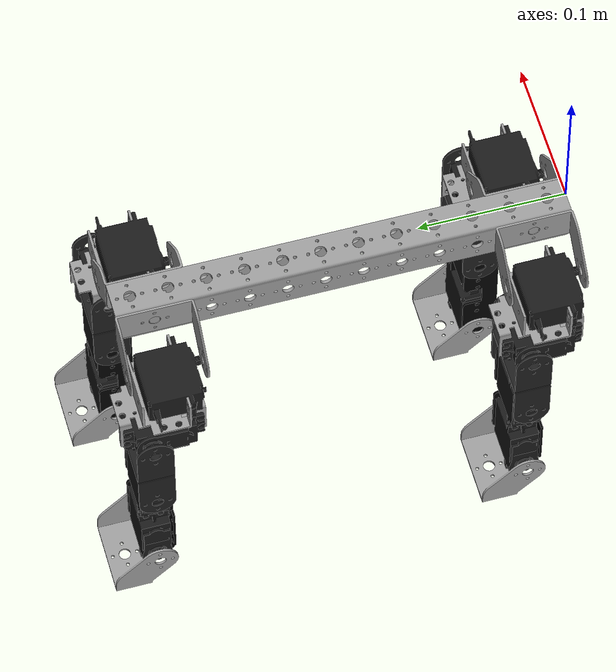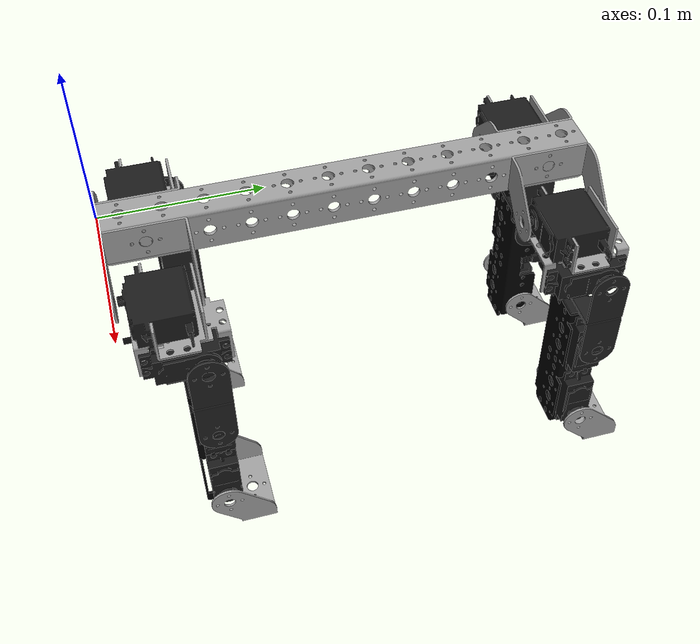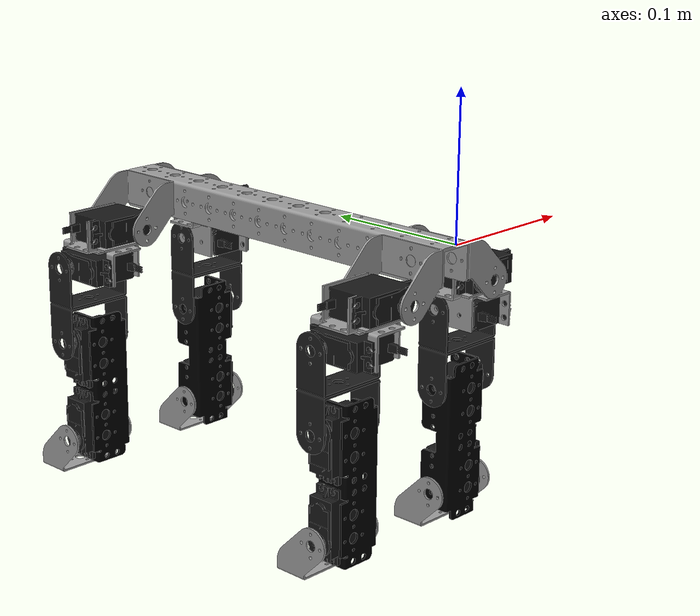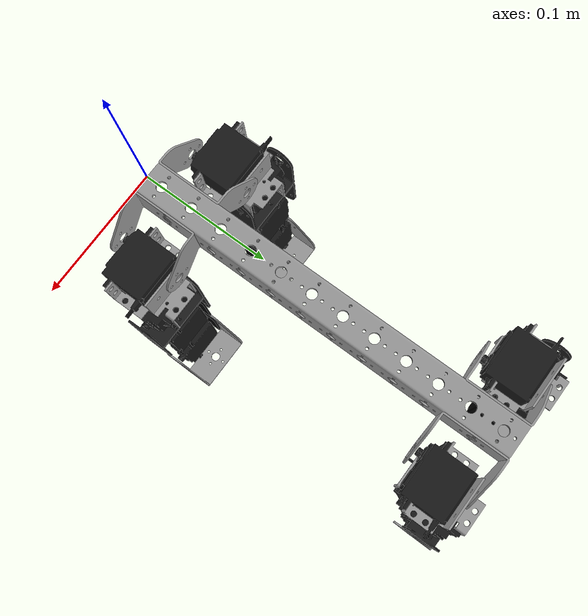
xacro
<?xml version="1.0"?>
<robot xmlns:xacro="http://www.ros.org/wiki/xacro" name="qp4">

    <xacro:property name="cad_dir" value="file://$(find qp4_master)/../../assets/cad"/>

	<!-- Typically, STL/DAE model units are in mm, but RViz units are in m, hence models must be scaled down by 1000. -->
    <xacro:macro name="default_geometry" params="cad_file extension:=dae">
        <geometry>
           <mesh filename="${cad_dir}/${cad_file}.${extension}" scale="0.001 0.001 0.001"/> -->
        </geometry>
    </xacro:macro>

    <xacro:macro name="z_rot">
        <axis xyz="0 0 1"/>
    </xacro:macro>

    <xacro:include filename="$(find qp4_master)/urdf/qp4_materials.xacro"/>
    <xacro:include filename="$(find qp4_master)/urdf/qp4_gazebo.xacro"/>
    <xacro:include filename="$(find qp4_master)/urdf/qp4_parts.xacro"/>

</robot>

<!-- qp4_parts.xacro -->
<!-- QP4 parts -->
<robot xmlns:xacro="http://www.ros.org/wiki/xacro">

    <!-- Torso -->

    <link name="torso_link">
		<visual>
            <xacro:default_geometry cad_file="asb-512"/>
            <origin rpy="${pi/2} 0 0"/>
		</visual>
        <visual>
            <xacro:default_geometry cad_file="asb-11"/>
            <origin xyz="-0.0125 0.0254 -0.0127" rpy="0 0 ${pi/2}"/>
	   </visual>
        <visual>
            <xacro:default_geometry cad_file="asb-11"/>
            <origin xyz="0.0125 0.0254 -0.0127" rpy="0 0 -${pi/2}"/>
	   </visual>
        <visual>
            <xacro:default_geometry cad_file="asb-11"/>
            <origin xyz="-0.0125 0.2794 -0.0127" rpy="0 0 ${pi/2}"/>
	   </visual>
        <visual>
            <xacro:default_geometry cad_file="asb-11"/>
            <origin xyz="0.0125 0.2794 -0.0127" rpy="0 0 -${pi/2}"/>
	   </visual>

	 	<collision>
            <xacro:default_geometry cad_file="asb-512"/>
            <origin rpy="${pi/2} 0 0"/>
		</collision>
        <collision>
            <xacro:default_geometry cad_file="asb-11"/>
            <origin xyz="-0.0125 0.0254 -0.0127" rpy="0 0 ${pi/2}"/>
	   </collision>
        <collision>
            <xacro:default_geometry cad_file="asb-11"/>
            <origin xyz="0.0125 0.0254 -0.0127" rpy="0 0 -${pi/2}"/>
	   </collision>
        <collision>
            <xacro:default_geometry cad_file="asb-11"/>
            <origin xyz="-0.0125 0.2794 -0.0127" rpy="0 0 ${pi/2}"/>
	   </collision>
        <collision>
            <xacro:default_geometry cad_file="asb-11"/>
            <origin xyz="0.0125 0.2794 -0.0127" rpy="0 0 -${pi/2}"/>
	   </collision>

        <inertial>
          <origin xyz="0 0 0"/>
          <mass value="1.0"/>
          <inertia  ixx="0.001" ixy="0.0"  ixz="0.0"  iyy="0.001"  iyz="0.0"  izz="0.001"/>
        </inertial>
	</link>

	<!-- Legs -->

	<xacro:macro name="leg" params="prefix reflectx reflecty">
		<!-- Hip -->
		<link name="${prefix}_hip_link">
	 		<visual>
		        <xacro:default_geometry cad_file="hs-645-mg"/>
		        <origin xyz="${reflectx*(0.01)} 0 0" rpy="0 ${reflectx*(-(pi/2))} ${reflectx*(pi/2)}"/>
			</visual>
			 <visual>
		        <xacro:default_geometry cad_file="asb-04"/>
		        <origin xyz="${reflectx*(0.01)} -0.0127 -0.0145" rpy="${pi/2} 0 ${reflectx*(pi)}"/>
			</visual>
			<visual>
		        <xacro:default_geometry cad_file="asb-04"/>
		        <origin xyz="${reflectx*(0.0129)} -0.0098 -0.0145" rpy="-${pi/2} 0 ${reflectx*(pi/2)}"/>
			</visual>
		    <visual>
		        <xacro:default_geometry cad_file="hs-645-mg"/>
		        <origin xyz="0 -0.0098 -0.029" rpy="${pi/2} ${reflectx*(pi/2)} ${reflectx*(pi/2)}"/>
			</visual>

	 		<collision>
		        <xacro:default_geometry cad_file="hs-645-mg"/>
		        <origin xyz="${reflectx*(0.01)} 0 0" rpy="0 ${reflectx*(-(pi/2))} ${reflectx*(pi/2)}"/>
			</collision>
			 <collision>
		        <xacro:default_geometry cad_file="asb-04"/>
		        <origin xyz="${reflectx*(0.01)} -0.0127 -0.0145" rpy="${pi/2} 0 ${reflectx*(pi)}"/>
			</collision>
			<collision>
		        <xacro:default_geometry cad_file="asb-04"/>
		        <origin xyz="${reflectx*(0.0129)} -0.0098 -0.0145" rpy="-${pi/2} 0 ${reflectx*(pi/2)}"/>
			</collision>
		    <collision>
		        <xacro:default_geometry cad_file="hs-645-mg"/>
		        <origin xyz="0 -0.0098 -0.029" rpy="${pi/2} ${reflectx*(pi/2)} ${reflectx*(pi/2)}"/>
			</collision>

		    <inertial>
		      <origin xyz="0 0 0"/>
		      <mass value="1.0"/>
		      <inertia  ixx="0.001" ixy="0.0"  ixz="0.0"  iyy="0.001"  iyz="0.0"  izz="0.001"/>
		    </inertial>
		</link>

	  	<joint name="${prefix}_hip_swing_joint" type="revolute">
			<parent link="torso_link"/>
			<child link="${prefix}_hip_link"/>
			<origin xyz="${reflectx*(0.0398)} ${0.0444 + (0.254/2) + -reflecty*(0.254/2)} -0.0315" />
			<limit lower="${-pi}" upper="${pi}" effort="10" velocity="1.0"/>
	  	</joint>

		<!-- Femur -->
		<link name="${prefix}_femur_link">
			<visual>
			    <xacro:default_geometry cad_file="asb-09-black"/>
			    <origin xyz="0 0.0287 0" rpy="0 0 0"/>
			</visual>
			<visual>
			    <xacro:default_geometry cad_file="asb-09-black"/>
			    <origin xyz="0 0.0287 0" rpy="${reflectx*(pi)} 0 0"/>
			</visual>

			<collision>
			    <xacro:default_geometry cad_file="asb-09-black"/>
			    <origin xyz="0 0.0287 0" rpy="0 0 0"/>
			</collision>
			<collision>
			    <xacro:default_geometry cad_file="asb-09-black"/>
			    <origin xyz="0 0.0287 0" rpy="${reflectx*(pi)} 0 0"/>
			</collision>

		    <inertial>
		      <origin xyz="0 0 0"/>
		      <mass value="1.0"/>
		      <inertia  ixx="0.001" ixy="0.0"  ixz="0.0"  iyy="0.001"  iyz="0.0"  izz="0.001"/>
		    </inertial>

		</link>

	  	<joint name="${prefix}_hip_lateral_joint" type="revolute">
			<parent link="${prefix}_hip_link"/>
			<child link="${prefix}_femur_link"/>
			<origin xyz="${reflectx*(0.0192)} 0.0005 -0.0290" rpy="-${pi/2} 0 0"/>
			<limit lower="${-pi}" upper="${pi}" effort="10" velocity="1.0"/>
	  	</joint>

		<!-- Tibia -->
		<link name="${prefix}_tibia_link">
			<visual>
			    <xacro:default_geometry cad_file="asb-15-black"/>
			    <origin xyz="${reflectx*(-0.0043)} -0.01422 -0.0386" rpy="0 ${reflectx*(-(pi/2))} 0 "/>
			</visual>
		 	<visual>
		        <xacro:default_geometry cad_file="hs-645-mg"/>
		        <origin xyz="0.0 0 -0.01" rpy="${pi/2} 0 ${reflectx*(pi/2)}"/>
			</visual>
		 	<visual>
		        <xacro:default_geometry cad_file="hs-645-mg"/>
		        <origin xyz="0.0 0 -0.067" rpy="-${pi/2} 0 ${reflectx*(-(pi/2))}"/>
			</visual>

			<collision>
			    <xacro:default_geometry cad_file="asb-15-black"/>
			    <origin xyz="${reflectx*(-0.0043)} -0.01422 -0.0386" rpy="0 ${reflectx*(-(pi/2))} 0 "/>
			</collision>
		 	<collision>
		        <xacro:default_geometry cad_file="hs-645-mg"/>
		        <origin xyz="0.0 0 -0.01" rpy="${pi/2} 0 ${reflectx*(pi/2)}"/>
			</collision>
		 	<collision>
		        <xacro:default_geometry cad_file="hs-645-mg"/>
		        <origin xyz="0.0 0 -0.067" rpy="-${pi/2} 0 ${reflectx*(-(pi/2))}"/>
			</collision>

		    <inertial>
		      <origin xyz="0 0 0"/>
		      <mass value="1.0"/>
		      <inertia  ixx="0.001" ixy="0.0"  ixz="0.0"  iyy="0.001"  iyz="0.0"  izz="0.001"/>
		    </inertial>

		</link>

	  	<joint name="${prefix}_knee_joint" type="revolute">
			<parent link="${prefix}_femur_link"/>
			<child link="${prefix}_tibia_link"/>
			<origin xyz="${reflectx*(-0.019)} 0.0572 0" rpy="${pi/2} 0 0"/>
			<limit lower="${-pi}" upper="${pi}" effort="10" velocity="1.0"/>
	  	</joint>

		<!-- Foot -->
		<link name="${prefix}_foot_link">
			<visual>
				<xacro:default_geometry cad_file="asb-11"/>
				<origin xyz="0 0.0185 -0.0272" rpy="${pi/2} 0 ${pi}" />
			</visual>

			<collision>
				<xacro:default_geometry cad_file="asb-11"/>
				<origin xyz="0 0.0185 -0.0272" rpy="${pi/2} 0 ${pi}" />
			</collision>

		    <inertial>
		      <origin xyz="0 0 0"/>
		      <mass value="1.0"/>
		      <inertia  ixx="0.001" ixy="0.0"  ixz="0.0"  iyy="0.001"  iyz="0.0"  izz="0.001"/>
		    </inertial>

		</link>

		<joint name="${prefix}_ankle_joint" type="revolute">
			<parent link="${prefix}_tibia_link"/>
			<child link="${prefix}_foot_link"/>
			<origin xyz="${reflectx*(0.0185)} ${reflecty*(-0.0002)} -0.077" rpy="0 0 0"/>
			<limit lower="${-pi}" upper="${pi}" effort="10" velocity="1.0"/>
	  	</joint>

	</xacro:macro>

	<xacro:leg prefix="back_right" 	reflectx="1" 	reflecty="1" />

	<xacro:leg prefix="back_left" 	reflectx="-1" 	reflecty="1" />

	<xacro:leg prefix="front_right" reflectx="1" 	reflecty="-1" />

	<xacro:leg prefix="front_left" 	reflectx="-1" 	reflecty="-1" />

</robot>
